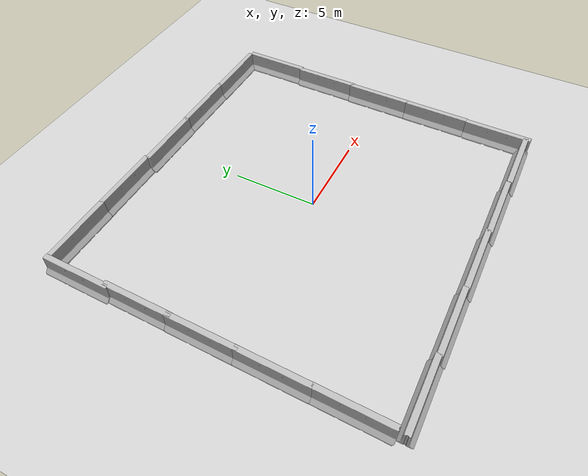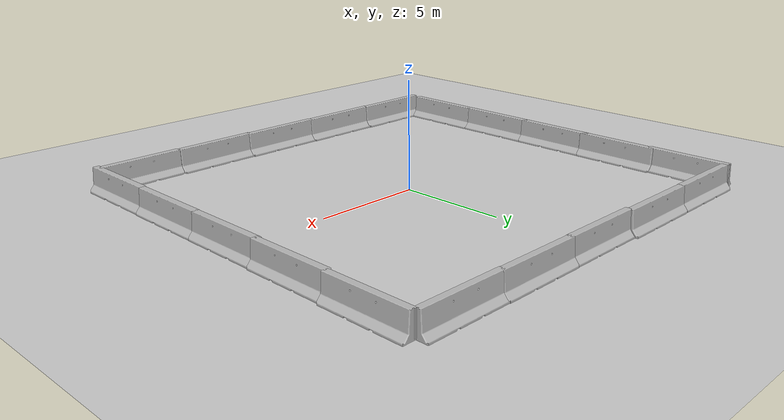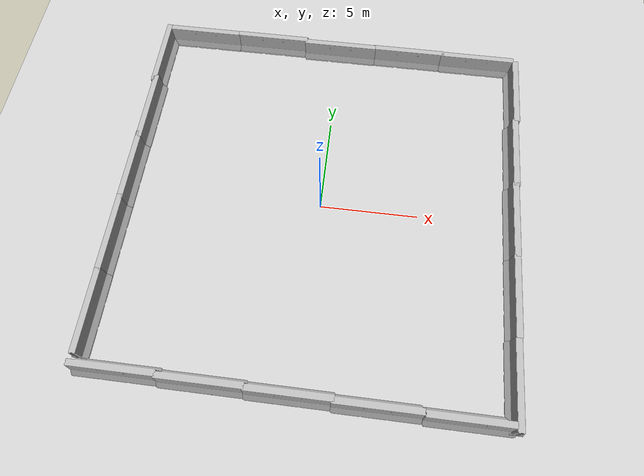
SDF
<sdf version="1.6">
 <world name="racecar_tunnel">
  <light name="sun" type="directional">
   <pose>0 0 10 0 -0 0</pose>
   <diffuse>0.8 0.8 0.8 1</diffuse>
   <specular>0.2 0.2 0.2 1</specular>
   <attenuation>
    <range>1000</range>
    <constant>0.9</constant>
    <linear>0.01</linear>
    <quadratic>0.001</quadratic>
   </attenuation>
   <direction>-0.5 0.1 -0.9</direction>
  </light>
  <model name="ground_plane">
   <static>1</static>
   <link name="link">
    <collision name="collision">
     <geometry><plane><normal>0 0 1</normal><size>150 150</size></plane></geometry>
     <surface><friction><ode><mu>100</mu><mu2>50</mu2></ode></friction></surface>
    </collision>
    <visual name="visual">
     <cast_shadows>0</cast_shadows>
     <geometry><plane><normal>0 0 1</normal><size>150 150</size></plane></geometry>
     <material>
      <script><uri>file://media/materials/scripts/gazebo.material</uri><name>Gazebo/Grey</name></script>
     </material>
    </visual>
   </link>
  </model>
  <gravity>0 0 -9.8</gravity>
  <magnetic_field>6e-06 2.3e-05 -4.2e-05</magnetic_field>
  <atmosphere type="adiabatic"/>
  <physics name="default_physics" default="0" type="ode">
   <max_step_size>0.001</max_step_size>
   <real_time_factor>1</real_time_factor>
   <real_time_update_rate>1000</real_time_update_rate>
  </physics>
  <scene><ambient>0.4 0.4 0.4 1</ambient><background>0.7 0.7 0.7 1</background><shadows>1</shadows></scene>
  <spherical_coordinates>
   <surface_model>EARTH_WGS84</surface_model>
   <latitude_deg>0</latitude_deg>
   <longitude_deg>0</longitude_deg>
   <elevation>0</elevation>
   <heading_deg>0</heading_deg>
  </spherical_coordinates>
  <model name="jersey_barrier">
   <static>1</static>
   <link name="link">
    <visual name="visual">
     <geometry><mesh><uri>model://jersey_barrier/meshes/jersey_barrier.dae</uri></mesh></geometry>
    </visual>
    <collision name="upright">
     <pose>0 0 0.5715 0 -0 0</pose>
     <geometry><box><size>4.06542 0.3063 1.143</size></box></geometry>
    </collision>
    <collision name="base">
     <pose>0 0 0.032258 0 -0 0</pose>
     <geometry><box><size>4.06542 0.8107 0.064516</size></box></geometry>
    </collision>
    <collision name="base2">
     <pose>0 0 0.1 0 -0 0</pose>
     <geometry><box><size>4.06542 0.65 0.1</size></box></geometry>
    </collision>
    <collision name="base3">
     <pose>0 0 0.2 0 -0 0</pose>
     <geometry><box><size>4.06542 0.5 0.1</size></box></geometry>
    </collision>
    <collision name="left-angle">
     <pose>0 -0.224 0.2401 0.9 -0 0</pose>
     <geometry><box><size>4.06542 0.5 0.064516</size></box></geometry>
    </collision>
    <collision name="right-angle">
     <pose>0 0.224 0.2401 -0.9 0 0</pose>
     <geometry><box><size>4.06542 0.5 0.064516</size></box></geometry>
    </collision>
   </link>
   <pose>-7.91697 9.98874 0 0 -0 0</pose>
  </model>
  <model name="jersey_barrier_0">
   <static>1</static>
   <link name="link">
    <visual name="visual">
     <geometry><mesh><uri>model://jersey_barrier/meshes/jersey_barrier.dae</uri></mesh></geometry>
    </visual>
    <collision name="upright">
     <pose>0 0 0.5715 0 -0 0</pose>
     <geometry><box><size>4.06542 0.3063 1.143</size></box></geometry>
    </collision>
    <collision name="base">
     <pose>0 0 0.032258 0 -0 0</pose>
     <geometry><box><size>4.06542 0.8107 0.064516</size></box></geometry>
    </collision>
    <collision name="base2">
     <pose>0 0 0.1 0 -0 0</pose>
     <geometry><box><size>4.06542 0.65 0.1</size></box></geometry>
    </collision>
    <collision name="base3">
     <pose>0 0 0.2 0 -0 0</pose>
     <geometry><box><size>4.06542 0.5 0.1</size></box></geometry>
    </collision>
    <collision name="left-angle">
     <pose>0 -0.224 0.2401 0.9 -0 0</pose>
     <geometry><box><size>4.06542 0.5 0.064516</size></box></geometry>
    </collision>
    <collision name="right-angle">
     <pose>0 0.224 0.2401 -0.9 0 0</pose>
     <geometry><box><size>4.06542 0.5 0.064516</size></box></geometry>
    </collision>
   </link>
   <pose>-3.95108 10.0014 0 0 -0 0</pose>
  </model>
  <model name="jersey_barrier_1">
   <static>1</static>
   <link name="link">
    <visual name="visual">
     <geometry><mesh><uri>model://jersey_barrier/meshes/jersey_barrier.dae</uri></mesh></geometry>
    </visual>
    <collision name="upright">
     <pose>0 0 0.5715 0 -0 0</pose>
     <geometry><box><size>4.06542 0.3063 1.143</size></box></geometry>
    </collision>
    <collision name="base">
     <pose>0 0 0.032258 0 -0 0</pose>
     <geometry><box><size>4.06542 0.8107 0.064516</size></box></geometry>
    </collision>
    <collision name="base2">
     <pose>0 0 0.1 0 -0 0</pose>
     <geometry><box><size>4.06542 0.65 0.1</size></box></geometry>
    </collision>
    <collision name="base3">
     <pose>0 0 0.2 0 -0 0</pose>
     <geometry><box><size>4.06542 0.5 0.1</size></box></geometry>
    </collision>
    <collision name="left-angle">
     <pose>0 -0.224 0.2401 0.9 -0 0</pose>
     <geometry><box><size>4.06542 0.5 0.064516</size></box></geometry>
    </collision>
    <collision name="right-angle">
     <pose>0 0.224 0.2401 -0.9 0 0</pose>
     <geometry><box><size>4.06542 0.5 0.064516</size></box></geometry>
    </collision>
   </link>
   <pose>-0.01537 9.88305 0 0 -0 0</pose>
  </model>
  <model name="jersey_barrier_2">
   <static>1</static>
   <link name="link">
    <visual name="visual">
     <geometry><mesh><uri>model://jersey_barrier/meshes/jersey_barrier.dae</uri></mesh></geometry>
    </visual>
    <collision name="upright">
     <pose>0 0 0.5715 0 -0 0</pose>
     <geometry><box><size>4.06542 0.3063 1.143</size></box></geometry>
    </collision>
    <collision name="base">
     <pose>0 0 0.032258 0 -0 0</pose>
     <geometry><box><size>4.06542 0.8107 0.064516</size></box></geometry>
    </collision>
    <collision name="base2">
     <pose>0 0 0.1 0 -0 0</pose>
     <geometry><box><size>4.06542 0.65 0.1</size></box></geometry>
    </collision>
    <collision name="base3">
     <pose>0 0 0.2 0 -0 0</pose>
     <geometry><box><size>4.06542 0.5 0.1</size></box></geometry>
    </collision>
    <collision name="left-angle">
     <pose>0 -0.224 0.2401 0.9 -0 0</pose>
     <geometry><box><size>4.06542 0.5 0.064516</size></box></geometry>
    </collision>
    <collision name="right-angle">
     <pose>0 0.224 0.2401 -0.9 0 0</pose>
     <geometry><box><size>4.06542 0.5 0.064516</size></box></geometry>
    </collision>
   </link>
   <pose>3.86175 9.90393 0 0 -0 0</pose>
  </model>
  <model name="jersey_barrier_3">
   <static>1</static>
   <link name="link">
    <visual name="visual">
     <geometry><mesh><uri>model://jersey_barrier/meshes/jersey_barrier.dae</uri></mesh></geometry>
    </visual>
    <collision name="upright">
     <pose>0 0 0.5715 0 -0 0</pose>
     <geometry><box><size>4.06542 0.3063 1.143</size></box></geometry>
    </collision>
    <collision name="base">
     <pose>0 0 0.032258 0 -0 0</pose>
     <geometry><box><size>4.06542 0.8107 0.064516</size></box></geometry>
    </collision>
    <collision name="base2">
     <pose>0 0 0.1 0 -0 0</pose>
     <geometry><box><size>4.06542 0.65 0.1</size></box></geometry>
    </collision>
    <collision name="base3">
     <pose>0 0 0.2 0 -0 0</pose>
     <geometry><box><size>4.06542 0.5 0.1</size></box></geometry>
    </collision>
    <collision name="left-angle">
     <pose>0 -0.224 0.2401 0.9 -0 0</pose>
     <geometry><box><size>4.06542 0.5 0.064516</size></box></geometry>
    </collision>
    <collision name="right-angle">
     <pose>0 0.224 0.2401 -0.9 0 0</pose>
     <geometry><box><size>4.06542 0.5 0.064516</size></box></geometry>
    </collision>
   </link>
   <pose>7.77765 9.87514 0 0 -0 0</pose>
  </model>
  <model name="jersey_barrier_4_clone">
   <static>1</static>
   <link name="link">
    <visual name="visual">
     <geometry><mesh><uri>model://jersey_barrier/meshes/jersey_barrier.dae</uri></mesh></geometry>
    </visual>
    <collision name="upright">
     <pose>0 0 0.5715 0 -0 0</pose>
     <geometry><box><size>4.06542 0.3063 1.143</size></box></geometry>
    </collision>
    <collision name="base">
     <pose>0 0 0.032258 0 -0 0</pose>
     <geometry><box><size>4.06542 0.8107 0.064516</size></box></geometry>
    </collision>
    <collision name="base2">
     <pose>0 0 0.1 0 -0 0</pose>
     <geometry><box><size>4.06542 0.65 0.1</size></box></geometry>
    </collision>
    <collision name="base3">
     <pose>0 0 0.2 0 -0 0</pose>
     <geometry><box><size>4.06542 0.5 0.1</size></box></geometry>
    </collision>
    <collision name="left-angle">
     <pose>0 -0.224 0.2401 0.9 -0 0</pose>
     <geometry><box><size>4.06542 0.5 0.064516</size></box></geometry>
    </collision>
    <collision name="right-angle">
     <pose>0 0.224 0.2401 -0.9 0 0</pose>
     <geometry><box><size>4.06542 0.5 0.064516</size></box></geometry>
    </collision>
   </link>
   <pose>-9.97587 4.41476 0 0 -0 1.57005</pose>
  </model>
  <model name="jersey_barrier_4_clone_0">
   <static>1</static>
   <link name="link">
    <visual name="visual">
     <geometry><mesh><uri>model://jersey_barrier/meshes/jersey_barrier.dae</uri></mesh></geometry>
    </visual>
    <collision name="upright">
     <pose>0 0 0.5715 0 -0 0</pose>
     <geometry><box><size>4.06542 0.3063 1.143</size></box></geometry>
    </collision>
    <collision name="base">
     <pose>0 0 0.032258 0 -0 0</pose>
     <geometry><box><size>4.06542 0.8107 0.064516</size></box></geometry>
    </collision>
    <collision name="base2">
     <pose>0 0 0.1 0 -0 0</pose>
     <geometry><box><size>4.06542 0.65 0.1</size></box></geometry>
    </collision>
    <collision name="base3">
     <pose>0 0 0.2 0 -0 0</pose>
     <geometry><box><size>4.06542 0.5 0.1</size></box></geometry>
    </collision>
    <collision name="left-angle">
     <pose>0 -0.224 0.2401 0.9 -0 0</pose>
     <geometry><box><size>4.06542 0.5 0.064516</size></box></geometry>
    </collision>
    <collision name="right-angle">
     <pose>0 0.224 0.2401 -0.9 0 0</pose>
     <geometry><box><size>4.06542 0.5 0.064516</size></box></geometry>
    </collision>
   </link>
   <pose>-9.99502 0.738149 0 0 -0 1.57005</pose>
  </model>
  <model name="jersey_barrier_4_clone_1">
   <static>1</static>
   <link name="link">
    <visual name="visual">
     <geometry><mesh><uri>model://jersey_barrier/meshes/jersey_barrier.dae</uri></mesh></geometry>
    </visual>
    <collision name="upright">
     <pose>0 0 0.5715 0 -0 0</pose>
     <geometry><box><size>4.06542 0.3063 1.143</size></box></geometry>
    </collision>
    <collision name="base">
     <pose>0 0 0.032258 0 -0 0</pose>
     <geometry><box><size>4.06542 0.8107 0.064516</size></box></geometry>
    </collision>
    <collision name="base2">
     <pose>0 0 0.1 0 -0 0</pose>
     <geometry><box><size>4.06542 0.65 0.1</size></box></geometry>
    </collision>
    <collision name="base3">
     <pose>0 0 0.2 0 -0 0</pose>
     <geometry><box><size>4.06542 0.5 0.1</size></box></geometry>
    </collision>
    <collision name="left-angle">
     <pose>0 -0.224 0.2401 0.9 -0 0</pose>
     <geometry><box><size>4.06542 0.5 0.064516</size></box></geometry>
    </collision>
    <collision name="right-angle">
     <pose>0 0.224 0.2401 -0.9 0 0</pose>
     <geometry><box><size>4.06542 0.5 0.064516</size></box></geometry>
    </collision>
   </link>
   <pose>-9.99952 -3.04567 0 0 -0 1.57005</pose>
  </model>
  <model name="jersey_barrier_4_clone_2">
   <static>1</static>
   <link name="link">
    <visual name="visual">
     <geometry><mesh><uri>model://jersey_barrier/meshes/jersey_barrier.dae</uri></mesh></geometry>
    </visual>
    <collision name="upright">
     <pose>0 0 0.5715 0 -0 0</pose>
     <geometry><box><size>4.06542 0.3063 1.143</size></box></geometry>
    </collision>
    <collision name="base">
     <pose>0 0 0.032258 0 -0 0</pose>
     <geometry><box><size>4.06542 0.8107 0.064516</size></box></geometry>
    </collision>
    <collision name="base2">
     <pose>0 0 0.1 0 -0 0</pose>
     <geometry><box><size>4.06542 0.65 0.1</size></box></geometry>
    </collision>
    <collision name="base3">
     <pose>0 0 0.2 0 -0 0</pose>
     <geometry><box><size>4.06542 0.5 0.1</size></box></geometry>
    </collision>
    <collision name="left-angle">
     <pose>0 -0.224 0.2401 0.9 -0 0</pose>
     <geometry><box><size>4.06542 0.5 0.064516</size></box></geometry>
    </collision>
    <collision name="right-angle">
     <pose>0 0.224 0.2401 -0.9 0 0</pose>
     <geometry><box><size>4.06542 0.5 0.064516</size></box></geometry>
    </collision>
   </link>
   <pose>-9.99439 -6.97874 0 0 -0 1.57005</pose>
  </model>
  <model name="jersey_barrier_4_clone_3">
   <static>1</static>
   <link name="link">
    <visual name="visual">
     <geometry><mesh><uri>model://jersey_barrier/meshes/jersey_barrier.dae</uri></mesh></geometry>
    </visual>
    <collision name="upright">
     <pose>0 0 0.5715 0 -0 0</pose>
     <geometry><box><size>4.06542 0.3063 1.143</size></box></geometry>
    </collision>
    <collision name="base">
     <pose>0 0 0.032258 0 -0 0</pose>
     <geometry><box><size>4.06542 0.8107 0.064516</size></box></geometry>
    </collision>
    <collision name="base2">
     <pose>0 0 0.1 0 -0 0</pose>
     <geometry><box><size>4.06542 0.65 0.1</size></box></geometry>
    </collision>
    <collision name="base3">
     <pose>0 0 0.2 0 -0 0</pose>
     <geometry><box><size>4.06542 0.5 0.1</size></box></geometry>
    </collision>
    <collision name="left-angle">
     <pose>0 -0.224 0.2401 0.9 -0 0</pose>
     <geometry><box><size>4.06542 0.5 0.064516</size></box></geometry>
    </collision>
    <collision name="right-angle">
     <pose>0 0.224 0.2401 -0.9 0 0</pose>
     <geometry><box><size>4.06542 0.5 0.064516</size></box></geometry>
    </collision>
   </link>
   <pose>9.9137 7.79512 0 0 -0 1.57005</pose>
  </model>
  <model name="jersey_barrier_4_clone_4">
   <static>1</static>
   <link name="link">
    <visual name="visual">
     <geometry><mesh><uri>model://jersey_barrier/meshes/jersey_barrier.dae</uri></mesh></geometry>
    </visual>
    <collision name="upright">
     <pose>0 0 0.5715 0 -0 0</pose>
     <geometry><box><size>4.06542 0.3063 1.143</size></box></geometry>
    </collision>
    <collision name="base">
     <pose>0 0 0.032258 0 -0 0</pose>
     <geometry><box><size>4.06542 0.8107 0.064516</size></box></geometry>
    </collision>
    <collision name="base2">
     <pose>0 0 0.1 0 -0 0</pose>
     <geometry><box><size>4.06542 0.65 0.1</size></box></geometry>
    </collision>
    <collision name="base3">
     <pose>0 0 0.2 0 -0 0</pose>
     <geometry><box><size>4.06542 0.5 0.1</size></box></geometry>
    </collision>
    <collision name="left-angle">
     <pose>0 -0.224 0.2401 0.9 -0 0</pose>
     <geometry><box><size>4.06542 0.5 0.064516</size></box></geometry>
    </collision>
    <collision name="right-angle">
     <pose>0 0.224 0.2401 -0.9 0 0</pose>
     <geometry><box><size>4.06542 0.5 0.064516</size></box></geometry>
    </collision>
   </link>
   <pose>9.82492 3.8542 0 0 -0 1.57005</pose>
  </model>
  <model name="jersey_barrier_4_clone_5">
   <static>1</static>
   <link name="link">
    <visual name="visual">
     <geometry><mesh><uri>model://jersey_barrier/meshes/jersey_barrier.dae</uri></mesh></geometry>
    </visual>
    <collision name="upright">
     <pose>0 0 0.5715 0 -0 0</pose>
     <geometry><box><size>4.06542 0.3063 1.143</size></box></geometry>
    </collision>
    <collision name="base">
     <pose>0 0 0.032258 0 -0 0</pose>
     <geometry><box><size>4.06542 0.8107 0.064516</size></box></geometry>
    </collision>
    <collision name="base2">
     <pose>0 0 0.1 0 -0 0</pose>
     <geometry><box><size>4.06542 0.65 0.1</size></box></geometry>
    </collision>
    <collision name="base3">
     <pose>0 0 0.2 0 -0 0</pose>
     <geometry><box><size>4.06542 0.5 0.1</size></box></geometry>
    </collision>
    <collision name="left-angle">
     <pose>0 -0.224 0.2401 0.9 -0 0</pose>
     <geometry><box><size>4.06542 0.5 0.064516</size></box></geometry>
    </collision>
    <collision name="right-angle">
     <pose>0 0.224 0.2401 -0.9 0 0</pose>
     <geometry><box><size>4.06542 0.5 0.064516</size></box></geometry>
    </collision>
   </link>
   <pose>9.76684 0.018101 0 0 -0 1.57005</pose>
  </model>
  <model name="jersey_barrier_4_clone_6">
   <static>1</static>
   <link name="link">
    <visual name="visual">
     <geometry><mesh><uri>model://jersey_barrier/meshes/jersey_barrier.dae</uri></mesh></geometry>
    </visual>
    <collision name="upright">
     <pose>0 0 0.5715 0 -0 0</pose>
     <geometry><box><size>4.06542 0.3063 1.143</size></box></geometry>
    </collision>
    <collision name="base">
     <pose>0 0 0.032258 0 -0 0</pose>
     <geometry><box><size>4.06542 0.8107 0.064516</size></box></geometry>
    </collision>
    <collision name="base2">
     <pose>0 0 0.1 0 -0 0</pose>
     <geometry><box><size>4.06542 0.65 0.1</size></box></geometry>
    </collision>
    <collision name="base3">
     <pose>0 0 0.2 0 -0 0</pose>
     <geometry><box><size>4.06542 0.5 0.1</size></box></geometry>
    </collision>
    <collision name="left-angle">
     <pose>0 -0.224 0.2401 0.9 -0 0</pose>
     <geometry><box><size>4.06542 0.5 0.064516</size></box></geometry>
    </collision>
    <collision name="right-angle">
     <pose>0 0.224 0.2401 -0.9 0 0</pose>
     <geometry><box><size>4.06542 0.5 0.064516</size></box></geometry>
    </collision>
   </link>
   <pose>9.74867 -3.91072 0 0 -0 1.57005</pose>
  </model>
  <model name="jersey_barrier_4_clone_7">
   <static>1</static>
   <link name="link">
    <visual name="visual">
     <geometry><mesh><uri>model://jersey_barrier/meshes/jersey_barrier.dae</uri></mesh></geometry>
    </visual>
    <collision name="upright">
     <pose>0 0 0.5715 0 -0 0</pose>
     <geometry><box><size>4.06542 0.3063 1.143</size></box></geometry>
    </collision>
    <collision name="base">
     <pose>0 0 0.032258 0 -0 0</pose>
     <geometry><box><size>4.06542 0.8107 0.064516</size></box></geometry>
    </collision>
    <collision name="base2">
     <pose>0 0 0.1 0 -0 0</pose>
     <geometry><box><size>4.06542 0.65 0.1</size></box></geometry>
    </collision>
    <collision name="base3">
     <pose>0 0 0.2 0 -0 0</pose>
     <geometry><box><size>4.06542 0.5 0.1</size></box></geometry>
    </collision>
    <collision name="left-angle">
     <pose>0 -0.224 0.2401 0.9 -0 0</pose>
     <geometry><box><size>4.06542 0.5 0.064516</size></box></geometry>
    </collision>
    <collision name="right-angle">
     <pose>0 0.224 0.2401 -0.9 0 0</pose>
     <geometry><box><size>4.06542 0.5 0.064516</size></box></geometry>
    </collision>
   </link>
   <pose>9.70612 -7.91341 0 0 -0 1.57005</pose>
  </model>
  <model name="jersey_barrier_5">
   <static>1</static>
   <link name="link">
    <visual name="visual">
     <geometry><mesh><uri>model://jersey_barrier/meshes/jersey_barrier.dae</uri></mesh></geometry>
    </visual>
    <collision name="upright">
     <pose>0 0 0.5715 0 -0 0</pose>
     <geometry><box><size>4.06542 0.3063 1.143</size></box></geometry>
    </collision>
    <collision name="base">
     <pose>0 0 0.032258 0 -0 0</pose>
     <geometry><box><size>4.06542 0.8107 0.064516</size></box></geometry>
    </collision>
    <collision name="base2">
     <pose>0 0 0.1 0 -0 0</pose>
     <geometry><box><size>4.06542 0.65 0.1</size></box></geometry>
    </collision>
    <collision name="base3">
     <pose>0 0 0.2 0 -0 0</pose>
     <geometry><box><size>4.06542 0.5 0.1</size></box></geometry>
    </collision>
    <collision name="left-angle">
     <pose>0 -0.224 0.2401 0.9 -0 0</pose>
     <geometry><box><size>4.06542 0.5 0.064516</size></box></geometry>
    </collision>
    <collision name="right-angle">
     <pose>0 0.224 0.2401 -0.9 0 0</pose>
     <geometry><box><size>4.06542 0.5 0.064516</size></box></geometry>
    </collision>
   </link>
   <pose>-8.13489 -9.38825 0 0 -0 0</pose>
  </model>
  <model name="jersey_barrier_5_clone">
   <static>1</static>
   <link name="link">
    <visual name="visual">
     <geometry><mesh><uri>model://jersey_barrier/meshes/jersey_barrier.dae</uri></mesh></geometry>
    </visual>
    <collision name="upright">
     <pose>0 0 0.5715 0 -0 0</pose>
     <geometry><box><size>4.06542 0.3063 1.143</size></box></geometry>
    </collision>
    <collision name="base">
     <pose>0 0 0.032258 0 -0 0</pose>
     <geometry><box><size>4.06542 0.8107 0.064516</size></box></geometry>
    </collision>
    <collision name="base2">
     <pose>0 0 0.1 0 -0 0</pose>
     <geometry><box><size>4.06542 0.65 0.1</size></box></geometry>
    </collision>
    <collision name="base3">
     <pose>0 0 0.2 0 -0 0</pose>
     <geometry><box><size>4.06542 0.5 0.1</size></box></geometry>
    </collision>
    <collision name="left-angle">
     <pose>0 -0.224 0.2401 0.9 -0 0</pose>
     <geometry><box><size>4.06542 0.5 0.064516</size></box></geometry>
    </collision>
    <collision name="right-angle">
     <pose>0 0.224 0.2401 -0.9 0 0</pose>
     <geometry><box><size>4.06542 0.5 0.064516</size></box></geometry>
    </collision>
   </link>
   <pose>-4.1887 -9.44761 0 0 -0 0</pose>
  </model>
  <model name="jersey_barrier_5_clone_0">
   <static>1</static>
   <link name="link">
    <visual name="visual">
     <geometry><mesh><uri>model://jersey_barrier/meshes/jersey_barrier.dae</uri></mesh></geometry>
    </visual>
    <collision name="upright">
     <pose>0 0 0.5715 0 -0 0</pose>
     <geometry><box><size>4.06542 0.3063 1.143</size></box></geometry>
    </collision>
    <collision name="base">
     <pose>0 0 0.032258 0 -0 0</pose>
     <geometry><box><size>4.06542 0.8107 0.064516</size></box></geometry>
    </collision>
    <collision name="base2">
     <pose>0 0 0.1 0 -0 0</pose>
     <geometry><box><size>4.06542 0.65 0.1</size></box></geometry>
    </collision>
    <collision name="base3">
     <pose>0 0 0.2 0 -0 0</pose>
     <geometry><box><size>4.06542 0.5 0.1</size></box></geometry>
    </collision>
    <collision name="left-angle">
     <pose>0 -0.224 0.2401 0.9 -0 0</pose>
     <geometry><box><size>4.06542 0.5 0.064516</size></box></geometry>
    </collision>
    <collision name="right-angle">
     <pose>0 0.224 0.2401 -0.9 0 0</pose>
     <geometry><box><size>4.06542 0.5 0.064516</size></box></geometry>
    </collision>
   </link>
   <pose>-0.236298 -9.49679 0 0 -0 0</pose>
  </model>
  <model name="jersey_barrier_5_clone_1">
   <static>1</static>
   <link name="link">
    <visual name="visual">
     <geometry><mesh><uri>model://jersey_barrier/meshes/jersey_barrier.dae</uri></mesh></geometry>
    </visual>
    <collision name="upright">
     <pose>0 0 0.5715 0 -0 0</pose>
     <geometry><box><size>4.06542 0.3063 1.143</size></box></geometry>
    </collision>
    <collision name="base">
     <pose>0 0 0.032258 0 -0 0</pose>
     <geometry><box><size>4.06542 0.8107 0.064516</size></box></geometry>
    </collision>
    <collision name="base2">
     <pose>0 0 0.1 0 -0 0</pose>
     <geometry><box><size>4.06542 0.65 0.1</size></box></geometry>
    </collision>
    <collision name="base3">
     <pose>0 0 0.2 0 -0 0</pose>
     <geometry><box><size>4.06542 0.5 0.1</size></box></geometry>
    </collision>
    <collision name="left-angle">
     <pose>0 -0.224 0.2401 0.9 -0 0</pose>
     <geometry><box><size>4.06542 0.5 0.064516</size></box></geometry>
    </collision>
    <collision name="right-angle">
     <pose>0 0.224 0.2401 -0.9 0 0</pose>
     <geometry><box><size>4.06542 0.5 0.064516</size></box></geometry>
    </collision>
   </link>
   <pose>3.66315 -9.5635 0 0 -0 0</pose>
  </model>
  <model name="jersey_barrier_5_clone_2">
   <static>1</static>
   <link name="link">
    <visual name="visual">
     <geometry><mesh><uri>model://jersey_barrier/meshes/jersey_barrier.dae</uri></mesh></geometry>
    </visual>
    <collision name="upright">
     <pose>0 0 0.5715 0 -0 0</pose>
     <geometry><box><size>4.06542 0.3063 1.143</size></box></geometry>
    </collision>
    <collision name="base">
     <pose>0 0 0.032258 0 -0 0</pose>
     <geometry><box><size>4.06542 0.8107 0.064516</size></box></geometry>
    </collision>
    <collision name="base2">
     <pose>0 0 0.1 0 -0 0</pose>
     <geometry><box><size>4.06542 0.65 0.1</size></box></geometry>
    </collision>
    <collision name="base3">
     <pose>0 0 0.2 0 -0 0</pose>
     <geometry><box><size>4.06542 0.5 0.1</size></box></geometry>
    </collision>
    <collision name="left-angle">
     <pose>0 -0.224 0.2401 0.9 -0 0</pose>
     <geometry><box><size>4.06542 0.5 0.064516</size></box></geometry>
    </collision>
    <collision name="right-angle">
     <pose>0 0.224 0.2401 -0.9 0 0</pose>
     <geometry><box><size>4.06542 0.5 0.064516</size></box></geometry>
    </collision>
   </link>
   <pose>7.71054 -9.63013 0 0 -0 0</pose>
  </model>
  <model name="jersey_barrier_4_clone_clone">
   <static>1</static>
   <link name="link">
    <visual name="visual">
     <geometry><mesh><uri>model://jersey_barrier/meshes/jersey_barrier.dae</uri></mesh></geometry>
    </visual>
    <collision name="upright">
     <pose>0 0 0.5715 0 -0 0</pose>
     <geometry><box><size>4.06542 0.3063 1.143</size></box></geometry>
    </collision>
    <collision name="base">
     <pose>0 0 0.032258 0 -0 0</pose>
     <geometry><box><size>4.06542 0.8107 0.064516</size></box></geometry>
    </collision>
    <collision name="base2">
     <pose>0 0 0.1 0 -0 0</pose>
     <geometry><box><size>4.06542 0.65 0.1</size></box></geometry>
    </collision>
    <collision name="base3">
     <pose>0 0 0.2 0 -0 0</pose>
     <geometry><box><size>4.06542 0.5 0.1</size></box></geometry>
    </collision>
    <collision name="left-angle">
     <pose>0 -0.224 0.2401 0.9 -0 0</pose>
     <geometry><box><size>4.06542 0.5 0.064516</size></box></geometry>
    </collision>
    <collision name="right-angle">
     <pose>0 0.224 0.2401 -0.9 0 0</pose>
     <geometry><box><size>4.06542 0.5 0.064516</size></box></geometry>
    </collision>
   </link>
   <pose>-10.0733 8.13405 0 0 -0 1.57005</pose>
  </model>
 </world>
</sdf>
